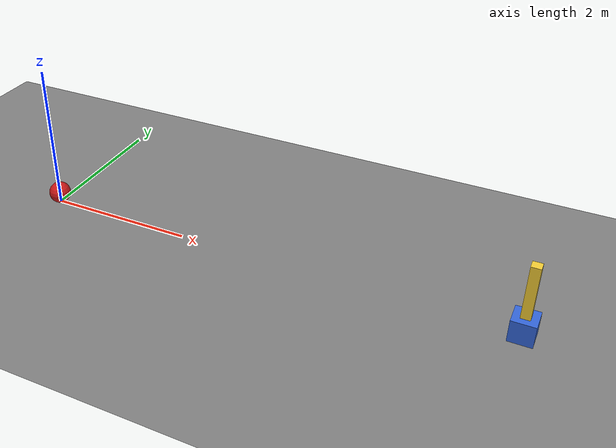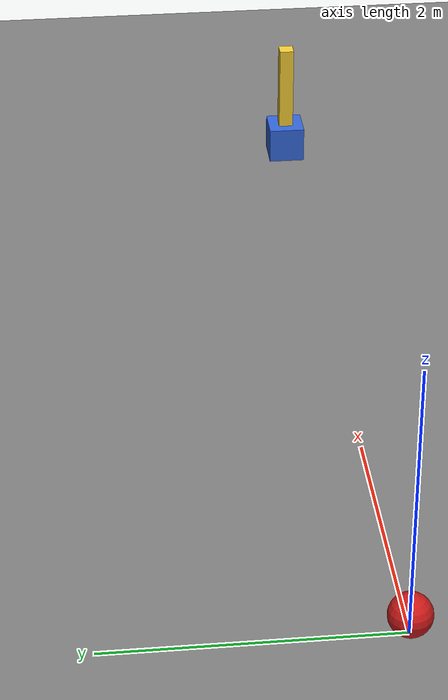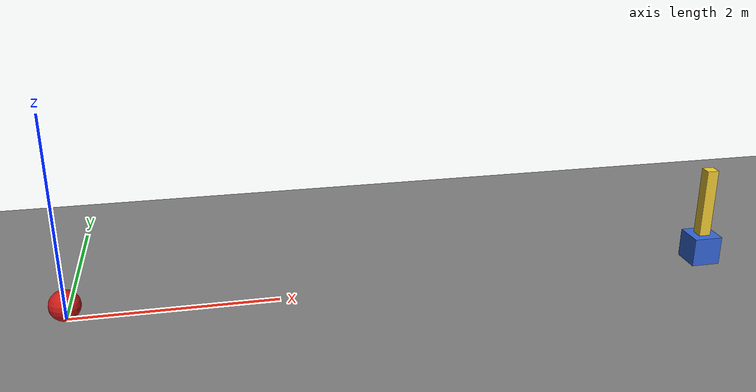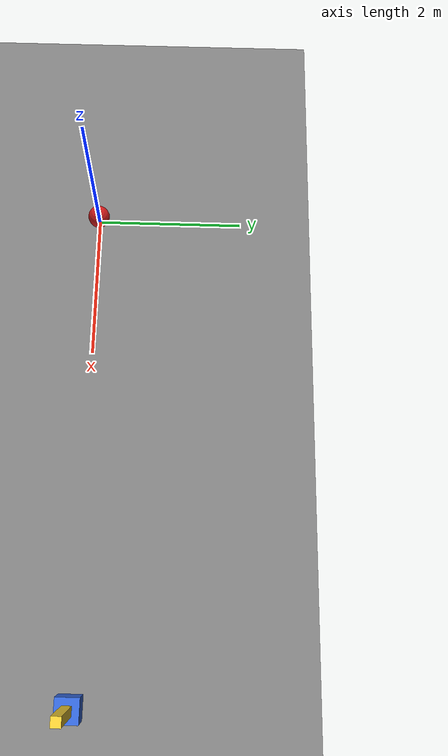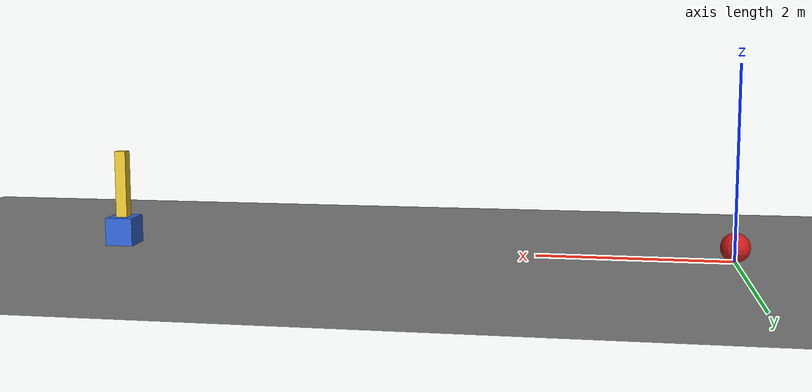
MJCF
<mujoco model="block_stack">
  <option timestep="0.002" gravity="0 0 -9.81"/>
  <visual>
    <global offwidth="1280" offheight="720"/>
  </visual>

  <default>
    <geom friction="0.6 0.005 0.03" solref="0.01 1"/>
  </default>

  <worldbody>
    <light diffuse="0.8 0.8 0.8" pos="3 0 4" dir="0 0 -1"/>

    <geom name="floor" type="plane" size="9 3 0.1" pos="3 0 0" rgba="0.5 0.5 0.5 1"/>

    <body name="ball" pos="0 0 0.15">
      <freejoint/>
      <geom name="ball_geom" type="sphere" size="0.15" mass="0.5" rgba="0.8 0.1 0.1 1"
            condim="6"/>
    </body>
    <body name="box_bottom" pos="6.5 0 0.15">
      <freejoint/>
      <geom name="box_bottom_geom" type="box" size="0.15 0.15 0.15" mass="0.4"
            rgba="0.2 0.4 0.85 1"/>
    </body>
    <body name="box_top" pos="6.5 0 0.66">
      <freejoint/>
      <geom name="box_top_geom" type="box" size="0.06 0.06 0.36" mass="0.2"
            rgba="0.95 0.8 0.2 1"/>
    </body>
  </worldbody>

  <keyframe>
    <key name="strike" qpos="0 0 0.15 1 0 0 0   6.5 0 0.15 1 0 0 0   6.5 0 0.66 1 0 0 0"
         qvel="6.0 0 0 0 0 0   0 0 0 0 0 0   0 0 0 0 0 0"/>
  </keyframe>
</mujoco>
